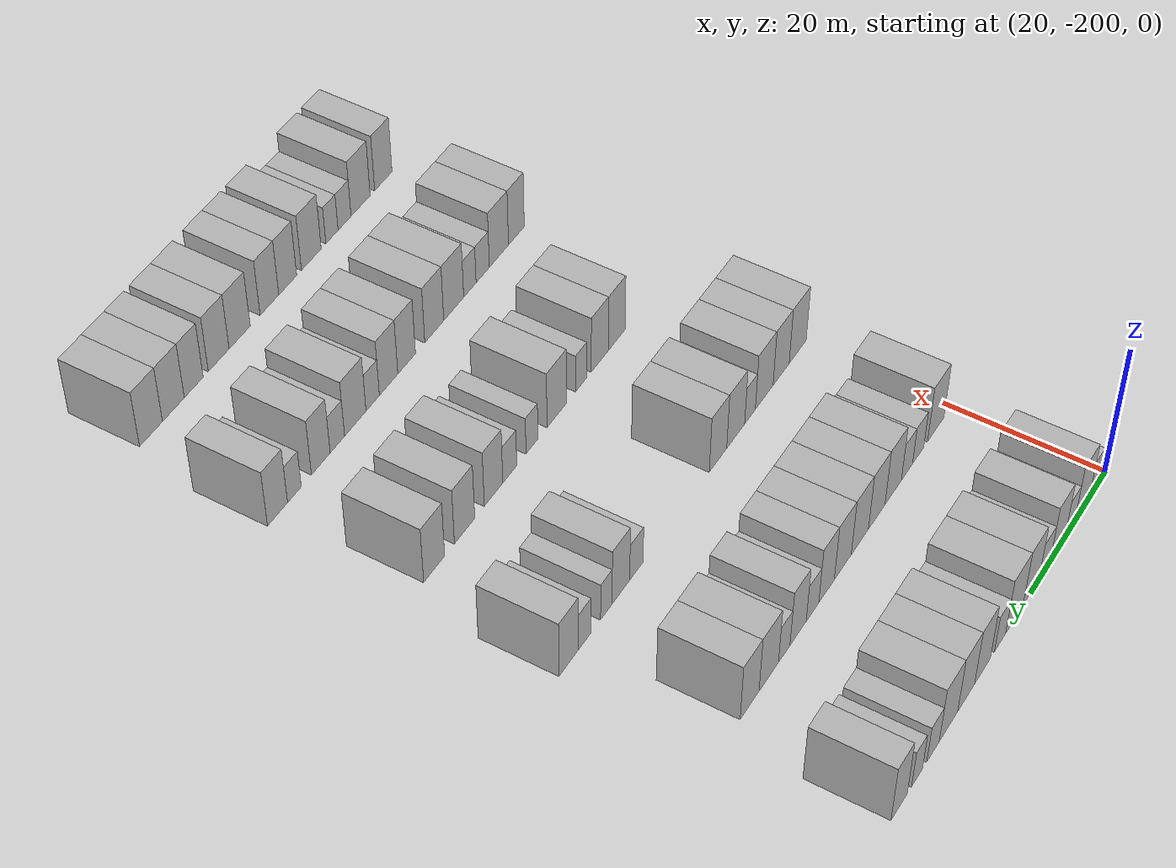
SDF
<sdf version="1.6">
 <world name="default">
  <model name="building_42">
   <static>1</static>
   <pose>25.0000 -196.8254 0 0.000000 0.000000 0.000000</pose>
   <link name="link">
    <pose>0 0 3.00 0 0 0</pose>
    <collision name="collision"><geometry><box><size>10.0000 2.4266 6.0000</size></box></geometry></collision>
    <visual name="visual">
     <cast_shadows>0</cast_shadows>
     <geometry><box><size>10.0000 2.4266 6.0000</size></box></geometry>
     <material>
      <script>
       <uri>model://HANNAS_wall/materials/scripts</uri>
       <uri>model://HANNAS_wall/materials/textures</uri>
       <name>vrc/HANNAS_wall</name>
      </script>
     </material>
    </visual>
   </link>
  </model>
  <model name="building_43">
   <static>1</static>
   <pose>25.0000 -193.6304 0 0.000000 0.000000 0.000000</pose>
   <link name="link">
    <pose>0 0 4.50 0 0 0</pose>
    <collision name="collision"><geometry><box><size>10.0000 3.9633 9.0000</size></box></geometry></collision>
    <visual name="visual">
     <cast_shadows>0</cast_shadows>
     <geometry><box><size>10.0000 3.9633 9.0000</size></box></geometry>
     <material>
      <script>
       <uri>model://HANNAS_wall/materials/scripts</uri>
       <uri>model://HANNAS_wall/materials/textures</uri>
       <name>vrc/HANNAS_wall</name>
      </script>
     </material>
    </visual>
   </link>
  </model>
  <model name="building_44">
   <static>1</static>
   <pose>25.0000 -190.3373 0 0.000000 0.000000 0.000000</pose>
   <link name="link">
    <pose>0 0 3.00 0 0 0</pose>
    <collision name="collision"><geometry><box><size>10.0000 2.6229 6.0000</size></box></geometry></collision>
    <visual name="visual">
     <cast_shadows>0</cast_shadows>
     <geometry><box><size>10.0000 2.6229 6.0000</size></box></geometry>
     <material>
      <script>
       <uri>model://HANNAS_wall/materials/scripts</uri>
       <uri>model://HANNAS_wall/materials/textures</uri>
       <name>vrc/HANNAS_wall</name>
      </script>
     </material>
    </visual>
   </link>
  </model>
  <model name="building_45">
   <static>1</static>
   <pose>25.0000 -187.0705 0 0.000000 0.000000 0.000000</pose>
   <link name="link">
    <pose>0 0 4.50 0 0 0</pose>
    <collision name="collision"><geometry><box><size>10.0000 3.9106 9.0000</size></box></geometry></collision>
    <visual name="visual">
     <cast_shadows>0</cast_shadows>
     <geometry><box><size>10.0000 3.9106 9.0000</size></box></geometry>
     <material>
      <script>
       <uri>model://HANNAS_wall/materials/scripts</uri>
       <uri>model://HANNAS_wall/materials/textures</uri>
       <name>vrc/HANNAS_wall</name>
      </script>
     </material>
    </visual>
   </link>
  </model>
  <model name="building_46">
   <static>1</static>
   <pose>25.0000 -183.6408 0 0.000000 0.000000 0.000000</pose>
   <link name="link">
    <pose>0 0 3.00 0 0 0</pose>
    <collision name="collision"><geometry><box><size>10.0000 2.9488 6.0000</size></box></geometry></collision>
    <visual name="visual">
     <cast_shadows>0</cast_shadows>
     <geometry><box><size>10.0000 2.9488 6.0000</size></box></geometry>
     <material>
      <script>
       <uri>model://HANNAS_wall/materials/scripts</uri>
       <uri>model://HANNAS_wall/materials/textures</uri>
       <name>vrc/HANNAS_wall</name>
      </script>
     </material>
    </visual>
   </link>
  </model>
  <model name="building_47">
   <static>1</static>
   <pose>25.0000 -180.1391 0 0.000000 0.000000 0.000000</pose>
   <link name="link">
    <pose>0 0 4.50 0 0 0</pose>
    <collision name="collision"><geometry><box><size>10.0000 4.0547 9.0000</size></box></geometry></collision>
    <visual name="visual">
     <cast_shadows>0</cast_shadows>
     <geometry><box><size>10.0000 4.0547 9.0000</size></box></geometry>
     <material>
      <script>
       <uri>model://HANNAS_wall/materials/scripts</uri>
       <uri>model://HANNAS_wall/materials/textures</uri>
       <name>vrc/HANNAS_wall</name>
      </script>
     </material>
    </visual>
   </link>
  </model>
  <model name="building_48">
   <static>1</static>
   <pose>25.0000 -175.8912 0 0.000000 0.000000 0.000000</pose>
   <link name="link">
    <pose>0 0 4.50 0 0 0</pose>
    <collision name="collision"><geometry><box><size>10.0000 4.4411 9.0000</size></box></geometry></collision>
    <visual name="visual">
     <cast_shadows>0</cast_shadows>
     <geometry><box><size>10.0000 4.4411 9.0000</size></box></geometry>
     <material>
      <script>
       <uri>model://HANNAS_wall/materials/scripts</uri>
       <uri>model://HANNAS_wall/materials/textures</uri>
       <name>vrc/HANNAS_wall</name>
      </script>
     </material>
    </visual>
   </link>
  </model>
  <model name="building_49">
   <static>1</static>
   <pose>25.0000 -172.2766 0 0.000000 0.000000 0.000000</pose>
   <link name="link">
    <pose>0 0 3.00 0 0 0</pose>
    <collision name="collision"><geometry><box><size>10.0000 2.7881 6.0000</size></box></geometry></collision>
    <visual name="visual">
     <cast_shadows>0</cast_shadows>
     <geometry><box><size>10.0000 2.7881 6.0000</size></box></geometry>
     <material>
      <script>
       <uri>model://HANNAS_wall/materials/scripts</uri>
       <uri>model://HANNAS_wall/materials/textures</uri>
       <name>vrc/HANNAS_wall</name>
      </script>
     </material>
    </visual>
   </link>
  </model>
  <model name="building_50">
   <static>1</static>
   <pose>25.0000 -167.9389 0 0.000000 0.000000 0.000000</pose>
   <link name="link">
    <pose>0 0 4.50 0 0 0</pose>
    <collision name="collision"><geometry><box><size>10.0000 3.8872 9.0000</size></box></geometry></collision>
    <visual name="visual">
     <cast_shadows>0</cast_shadows>
     <geometry><box><size>10.0000 3.8872 9.0000</size></box></geometry>
     <material>
      <script>
       <uri>model://HANNAS_wall/materials/scripts</uri>
       <uri>model://HANNAS_wall/materials/textures</uri>
       <name>vrc/HANNAS_wall</name>
      </script>
     </material>
    </visual>
   </link>
  </model>
  <model name="building_51">
   <static>1</static>
   <pose>25.0000 -163.9529 0 0.000000 0.000000 0.000000</pose>
   <link name="link">
    <pose>0 0 4.50 0 0 0</pose>
    <collision name="collision"><geometry><box><size>10.0000 4.0848 9.0000</size></box></geometry></collision>
    <visual name="visual">
     <cast_shadows>0</cast_shadows>
     <geometry><box><size>10.0000 4.0848 9.0000</size></box></geometry>
     <material>
      <script>
       <uri>model://HANNAS_wall/materials/scripts</uri>
       <uri>model://HANNAS_wall/materials/textures</uri>
       <name>vrc/HANNAS_wall</name>
      </script>
     </material>
    </visual>
   </link>
  </model>
  <model name="building_52">
   <static>1</static>
   <pose>25.0000 -159.7087 0 0.000000 0.000000 0.000000</pose>
   <link name="link">
    <pose>0 0 4.50 0 0 0</pose>
    <collision name="collision"><geometry><box><size>10.0000 4.4035 9.0000</size></box></geometry></collision>
    <visual name="visual">
     <cast_shadows>0</cast_shadows>
     <geometry><box><size>10.0000 4.4035 9.0000</size></box></geometry>
     <material>
      <script>
       <uri>model://HANNAS_wall/materials/scripts</uri>
       <uri>model://HANNAS_wall/materials/textures</uri>
       <name>vrc/HANNAS_wall</name>
      </script>
     </material>
    </visual>
   </link>
  </model>
  <model name="building_53">
   <static>1</static>
   <pose>25.0000 -156.0464 0 0.000000 0.000000 0.000000</pose>
   <link name="link">
    <pose>0 0 3.00 0 0 0</pose>
    <collision name="collision"><geometry><box><size>10.0000 2.9211 6.0000</size></box></geometry></collision>
    <visual name="visual">
     <cast_shadows>0</cast_shadows>
     <geometry><box><size>10.0000 2.9211 6.0000</size></box></geometry>
     <material>
      <script>
       <uri>model://HANNAS_wall/materials/scripts</uri>
       <uri>model://HANNAS_wall/materials/textures</uri>
       <name>vrc/HANNAS_wall</name>
      </script>
     </material>
    </visual>
   </link>
  </model>
  <model name="building_54">
   <static>1</static>
   <pose>25.0000 -152.3284 0 0.000000 0.000000 0.000000</pose>
   <link name="link">
    <pose>0 0 3.00 0 0 0</pose>
    <collision name="collision"><geometry><box><size>10.0000 2.5150 6.0000</size></box></geometry></collision>
    <visual name="visual">
     <cast_shadows>0</cast_shadows>
     <geometry><box><size>10.0000 2.5150 6.0000</size></box></geometry>
     <material>
      <script>
       <uri>model://HANNAS_wall/materials/scripts</uri>
       <uri>model://HANNAS_wall/materials/textures</uri>
       <name>vrc/HANNAS_wall</name>
      </script>
     </material>
    </visual>
   </link>
  </model>
  <model name="building_55">
   <static>1</static>
   <pose>25.0000 -148.2291 0 0.000000 0.000000 0.000000</pose>
   <link name="link">
    <pose>0 0 4.50 0 0 0</pose>
    <collision name="collision"><geometry><box><size>10.0000 3.6836 9.0000</size></box></geometry></collision>
    <visual name="visual">
     <cast_shadows>0</cast_shadows>
     <geometry><box><size>10.0000 3.6836 9.0000</size></box></geometry>
     <material>
      <script>
       <uri>model://HANNAS_wall/materials/scripts</uri>
       <uri>model://HANNAS_wall/materials/textures</uri>
       <name>vrc/HANNAS_wall</name>
      </script>
     </material>
    </visual>
   </link>
  </model>
  <model name="building_219">
   <static>1</static>
   <pose>44.0000 -196.0016 0 0.000000 0.000000 0.000000</pose>
   <link name="link">
    <pose>0 0 4.50 0 0 0</pose>
    <collision name="collision"><geometry><box><size>10.0000 4.2069 9.0000</size></box></geometry></collision>
    <visual name="visual">
     <cast_shadows>0</cast_shadows>
     <geometry><box><size>10.0000 4.2069 9.0000</size></box></geometry>
     <material>
      <script>
       <uri>model://HANNAS_wall/materials/scripts</uri>
       <uri>model://HANNAS_wall/materials/textures</uri>
       <name>vrc/HANNAS_wall</name>
      </script>
     </material>
    </visual>
   </link>
  </model>
  <model name="building_220">
   <static>1</static>
   <pose>44.0000 -191.4738 0 0.000000 0.000000 0.000000</pose>
   <link name="link">
    <pose>0 0 3.00 0 0 0</pose>
    <collision name="collision"><geometry><box><size>10.0000 2.8487 6.0000</size></box></geometry></collision>
    <visual name="visual">
     <cast_shadows>0</cast_shadows>
     <geometry><box><size>10.0000 2.8487 6.0000</size></box></geometry>
     <material>
      <script>
       <uri>model://HANNAS_wall/materials/scripts</uri>
       <uri>model://HANNAS_wall/materials/textures</uri>
       <name>vrc/HANNAS_wall</name>
      </script>
     </material>
    </visual>
   </link>
  </model>
  <model name="building_221">
   <static>1</static>
   <pose>44.0000 -188.6452 0 0.000000 0.000000 0.000000</pose>
   <link name="link">
    <pose>0 0 3.00 0 0 0</pose>
    <collision name="collision"><geometry><box><size>10.0000 2.8086 6.0000</size></box></geometry></collision>
    <visual name="visual">
     <cast_shadows>0</cast_shadows>
     <geometry><box><size>10.0000 2.8086 6.0000</size></box></geometry>
     <material>
      <script>
       <uri>model://HANNAS_wall/materials/scripts</uri>
       <uri>model://HANNAS_wall/materials/textures</uri>
       <name>vrc/HANNAS_wall</name>
      </script>
     </material>
    </visual>
   </link>
  </model>
  <model name="building_222">
   <static>1</static>
   <pose>44.0000 -185.1945 0 0.000000 0.000000 0.000000</pose>
   <link name="link">
    <pose>0 0 4.50 0 0 0</pose>
    <collision name="collision"><geometry><box><size>10.0000 4.0927 9.0000</size></box></geometry></collision>
    <visual name="visual">
     <cast_shadows>0</cast_shadows>
     <geometry><box><size>10.0000 4.0927 9.0000</size></box></geometry>
     <material>
      <script>
       <uri>model://HANNAS_wall/materials/scripts</uri>
       <uri>model://HANNAS_wall/materials/textures</uri>
       <name>vrc/HANNAS_wall</name>
      </script>
     </material>
    </visual>
   </link>
  </model>
  <model name="building_223">
   <static>1</static>
   <pose>44.0000 -181.1204 0 0.000000 0.000000 0.000000</pose>
   <link name="link">
    <pose>0 0 4.50 0 0 0</pose>
    <collision name="collision"><geometry><box><size>10.0000 4.0556 9.0000</size></box></geometry></collision>
    <visual name="visual">
     <cast_shadows>0</cast_shadows>
     <geometry><box><size>10.0000 4.0556 9.0000</size></box></geometry>
     <material>
      <script>
       <uri>model://HANNAS_wall/materials/scripts</uri>
       <uri>model://HANNAS_wall/materials/textures</uri>
       <name>vrc/HANNAS_wall</name>
      </script>
     </material>
    </visual>
   </link>
  </model>
  <model name="building_224">
   <static>1</static>
   <pose>44.0000 -177.0201 0 0.000000 0.000000 0.000000</pose>
   <link name="link">
    <pose>0 0 4.50 0 0 0</pose>
    <collision name="collision"><geometry><box><size>10.0000 4.1449 9.0000</size></box></geometry></collision>
    <visual name="visual">
     <cast_shadows>0</cast_shadows>
     <geometry><box><size>10.0000 4.1449 9.0000</size></box></geometry>
     <material>
      <script>
       <uri>model://HANNAS_wall/materials/scripts</uri>
       <uri>model://HANNAS_wall/materials/textures</uri>
       <name>vrc/HANNAS_wall</name>
      </script>
     </material>
    </visual>
   </link>
  </model>
  <model name="building_225">
   <static>1</static>
   <pose>44.0000 -172.9276 0 0.000000 0.000000 0.000000</pose>
   <link name="link">
    <pose>0 0 4.50 0 0 0</pose>
    <collision name="collision"><geometry><box><size>10.0000 4.0401 9.0000</size></box></geometry></collision>
    <visual name="visual">
     <cast_shadows>0</cast_shadows>
     <geometry><box><size>10.0000 4.0401 9.0000</size></box></geometry>
     <material>
      <script>
       <uri>model://HANNAS_wall/materials/scripts</uri>
       <uri>model://HANNAS_wall/materials/textures</uri>
       <name>vrc/HANNAS_wall</name>
      </script>
     </material>
    </visual>
   </link>
  </model>
  <model name="building_226">
   <static>1</static>
   <pose>44.0000 -169.0834 0 0.000000 0.000000 0.000000</pose>
   <link name="link">
    <pose>0 0 4.50 0 0 0</pose>
    <collision name="collision"><geometry><box><size>10.0000 3.6482 9.0000</size></box></geometry></collision>
    <visual name="visual">
     <cast_shadows>0</cast_shadows>
     <geometry><box><size>10.0000 3.6482 9.0000</size></box></geometry>
     <material>
      <script>
       <uri>model://HANNAS_wall/materials/scripts</uri>
       <uri>model://HANNAS_wall/materials/textures</uri>
       <name>vrc/HANNAS_wall</name>
      </script>
     </material>
    </visual>
   </link>
  </model>
  <model name="building_227">
   <static>1</static>
   <pose>44.0000 -165.8080 0 0.000000 0.000000 0.000000</pose>
   <link name="link">
    <pose>0 0 3.00 0 0 0</pose>
    <collision name="collision"><geometry><box><size>10.0000 2.9027 6.0000</size></box></geometry></collision>
    <visual name="visual">
     <cast_shadows>0</cast_shadows>
     <geometry><box><size>10.0000 2.9027 6.0000</size></box></geometry>
     <material>
      <script>
       <uri>model://HANNAS_wall/materials/scripts</uri>
       <uri>model://HANNAS_wall/materials/textures</uri>
       <name>vrc/HANNAS_wall</name>
      </script>
     </material>
    </visual>
   </link>
  </model>
  <model name="building_228">
   <static>1</static>
   <pose>44.0000 -162.5005 0 0.000000 0.000000 0.000000</pose>
   <link name="link">
    <pose>0 0 4.50 0 0 0</pose>
    <collision name="collision"><geometry><box><size>10.0000 3.7123 9.0000</size></box></geometry></collision>
    <visual name="visual">
     <cast_shadows>0</cast_shadows>
     <geometry><box><size>10.0000 3.7123 9.0000</size></box></geometry>
     <material>
      <script>
       <uri>model://HANNAS_wall/materials/scripts</uri>
       <uri>model://HANNAS_wall/materials/textures</uri>
       <name>vrc/HANNAS_wall</name>
      </script>
     </material>
    </visual>
   </link>
  </model>
  <model name="building_229">
   <static>1</static>
   <pose>44.0000 -159.3428 0 0.000000 0.000000 0.000000</pose>
   <link name="link">
    <pose>0 0 3.00 0 0 0</pose>
    <collision name="collision"><geometry><box><size>10.0000 2.6029 6.0000</size></box></geometry></collision>
    <visual name="visual">
     <cast_shadows>0</cast_shadows>
     <geometry><box><size>10.0000 2.6029 6.0000</size></box></geometry>
     <material>
      <script>
       <uri>model://HANNAS_wall/materials/scripts</uri>
       <uri>model://HANNAS_wall/materials/textures</uri>
       <name>vrc/HANNAS_wall</name>
      </script>
     </material>
    </visual>
   </link>
  </model>
  <model name="building_230">
   <static>1</static>
   <pose>44.0000 -155.8816 0 0.000000 0.000000 0.000000</pose>
   <link name="link">
    <pose>0 0 4.50 0 0 0</pose>
    <collision name="collision"><geometry><box><size>10.0000 4.3194 9.0000</size></box></geometry></collision>
    <visual name="visual">
     <cast_shadows>0</cast_shadows>
     <geometry><box><size>10.0000 4.3194 9.0000</size></box></geometry>
     <material>
      <script>
       <uri>model://HANNAS_wall/materials/scripts</uri>
       <uri>model://HANNAS_wall/materials/textures</uri>
       <name>vrc/HANNAS_wall</name>
      </script>
     </material>
    </visual>
   </link>
  </model>
  <model name="building_231">
   <static>1</static>
   <pose>44.0000 -151.6518 0 0.000000 0.000000 0.000000</pose>
   <link name="link">
    <pose>0 0 4.50 0 0 0</pose>
    <collision name="collision"><geometry><box><size>10.0000 4.1403 9.0000</size></box></geometry></collision>
    <visual name="visual">
     <cast_shadows>0</cast_shadows>
     <geometry><box><size>10.0000 4.1403 9.0000</size></box></geometry>
     <material>
      <script>
       <uri>model://HANNAS_wall/materials/scripts</uri>
       <uri>model://HANNAS_wall/materials/textures</uri>
       <name>vrc/HANNAS_wall</name>
      </script>
     </material>
    </visual>
   </link>
  </model>
  <model name="building_390">
   <static>1</static>
   <pose>63.0000 -198.6753 0 0.000000 0.000000 0.000000</pose>
   <link name="link">
    <pose>0 0 4.50 0 0 0</pose>
    <collision name="collision"><geometry><box><size>10.0000 4.2214 9.0000</size></box></geometry></collision>
    <visual name="visual">
     <cast_shadows>0</cast_shadows>
     <geometry><box><size>10.0000 4.2214 9.0000</size></box></geometry>
     <material>
      <script>
       <uri>model://HANNAS_wall/materials/scripts</uri>
       <uri>model://HANNAS_wall/materials/textures</uri>
       <name>vrc/HANNAS_wall</name>
      </script>
     </material>
    </visual>
   </link>
  </model>
  <model name="building_391">
   <static>1</static>
   <pose>63.0000 -194.5860 0 0.000000 0.000000 0.000000</pose>
   <link name="link">
    <pose>0 0 4.50 0 0 0</pose>
    <collision name="collision"><geometry><box><size>10.0000 3.9570 9.0000</size></box></geometry></collision>
    <visual name="visual">
     <cast_shadows>0</cast_shadows>
     <geometry><box><size>10.0000 3.9570 9.0000</size></box></geometry>
     <material>
      <script>
       <uri>model://HANNAS_wall/materials/scripts</uri>
       <uri>model://HANNAS_wall/materials/textures</uri>
       <name>vrc/HANNAS_wall</name>
      </script>
     </material>
    </visual>
   </link>
  </model>
  <model name="building_392">
   <static>1</static>
   <pose>63.0000 -190.4575 0 0.000000 0.000000 0.000000</pose>
   <link name="link">
    <pose>0 0 4.50 0 0 0</pose>
    <collision name="collision"><geometry><box><size>10.0000 4.3001 9.0000</size></box></geometry></collision>
    <visual name="visual">
     <cast_shadows>0</cast_shadows>
     <geometry><box><size>10.0000 4.3001 9.0000</size></box></geometry>
     <material>
      <script>
       <uri>model://HANNAS_wall/materials/scripts</uri>
       <uri>model://HANNAS_wall/materials/textures</uri>
       <name>vrc/HANNAS_wall</name>
      </script>
     </material>
    </visual>
   </link>
  </model>
  <model name="building_393">
   <static>1</static>
   <pose>63.0000 -187.0245 0 0.000000 0.000000 0.000000</pose>
   <link name="link">
    <pose>0 0 3.00 0 0 0</pose>
    <collision name="collision"><geometry><box><size>10.0000 2.5659 6.0000</size></box></geometry></collision>
    <visual name="visual">
     <cast_shadows>0</cast_shadows>
     <geometry><box><size>10.0000 2.5659 6.0000</size></box></geometry>
     <material>
      <script>
       <uri>model://HANNAS_wall/materials/scripts</uri>
       <uri>model://HANNAS_wall/materials/textures</uri>
       <name>vrc/HANNAS_wall</name>
      </script>
     </material>
    </visual>
   </link>
  </model>
  <model name="building_394">
   <static>1</static>
   <pose>63.0000 -183.6294 0 0.000000 0.000000 0.000000</pose>
   <link name="link">
    <pose>0 0 4.50 0 0 0</pose>
    <collision name="collision"><geometry><box><size>10.0000 4.2244 9.0000</size></box></geometry></collision>
    <visual name="visual">
     <cast_shadows>0</cast_shadows>
     <geometry><box><size>10.0000 4.2244 9.0000</size></box></geometry>
     <material>
      <script>
       <uri>model://HANNAS_wall/materials/scripts</uri>
       <uri>model://HANNAS_wall/materials/textures</uri>
       <name>vrc/HANNAS_wall</name>
      </script>
     </material>
    </visual>
   </link>
  </model>
  <model name="building_395">
   <static>1</static>
   <pose>63.0000 -179.4862 0 0.000000 0.000000 0.000000</pose>
   <link name="link">
    <pose>0 0 4.50 0 0 0</pose>
    <collision name="collision"><geometry><box><size>10.0000 4.0619 9.0000</size></box></geometry></collision>
    <visual name="visual">
     <cast_shadows>0</cast_shadows>
     <geometry><box><size>10.0000 4.0619 9.0000</size></box></geometry>
     <material>
      <script>
       <uri>model://HANNAS_wall/materials/scripts</uri>
       <uri>model://HANNAS_wall/materials/textures</uri>
       <name>vrc/HANNAS_wall</name>
      </script>
     </material>
    </visual>
   </link>
  </model>
  <model name="building_396">
   <static>1</static>
   <pose>63.0000 -161.0842 0 0.000000 0.000000 0.000000</pose>
   <link name="link">
    <pose>0 0 3.00 0 0 0</pose>
    <collision name="collision"><geometry><box><size>10.0000 2.9140 6.0000</size></box></geometry></collision>
    <visual name="visual">
     <cast_shadows>0</cast_shadows>
     <geometry><box><size>10.0000 2.9140 6.0000</size></box></geometry>
     <material>
      <script>
       <uri>model://HANNAS_wall/materials/scripts</uri>
       <uri>model://HANNAS_wall/materials/textures</uri>
       <name>vrc/HANNAS_wall</name>
      </script>
     </material>
    </visual>
   </link>
  </model>
  <model name="building_397">
   <static>1</static>
   <pose>63.0000 -157.7318 0 0.000000 0.000000 0.000000</pose>
   <link name="link">
    <pose>0 0 4.50 0 0 0</pose>
    <collision name="collision"><geometry><box><size>10.0000 3.7908 9.0000</size></box></geometry></collision>
    <visual name="visual">
     <cast_shadows>0</cast_shadows>
     <geometry><box><size>10.0000 3.7908 9.0000</size></box></geometry>
     <material>
      <script>
       <uri>model://HANNAS_wall/materials/scripts</uri>
       <uri>model://HANNAS_wall/materials/textures</uri>
       <name>vrc/HANNAS_wall</name>
      </script>
     </material>
    </visual>
   </link>
  </model>
  <model name="building_398">
   <static>1</static>
   <pose>63.0000 -154.6274 0 0.000000 0.000000 0.000000</pose>
   <link name="link">
    <pose>0 0 3.00 0 0 0</pose>
    <collision name="collision"><geometry><box><size>10.0000 2.4180 6.0000</size></box></geometry></collision>
    <visual name="visual">
     <cast_shadows>0</cast_shadows>
     <geometry><box><size>10.0000 2.4180 6.0000</size></box></geometry>
     <material>
      <script>
       <uri>model://HANNAS_wall/materials/scripts</uri>
       <uri>model://HANNAS_wall/materials/textures</uri>
       <name>vrc/HANNAS_wall</name>
      </script>
     </material>
    </visual>
   </link>
  </model>
  <model name="building_399">
   <static>1</static>
   <pose>63.0000 -150.0706 0 0.000000 0.000000 0.000000</pose>
   <link name="link">
    <pose>0 0 3.00 0 0 0</pose>
    <collision name="collision"><geometry><box><size>10.0000 2.6957 6.0000</size></box></geometry></collision>
    <visual name="visual">
     <cast_shadows>0</cast_shadows>
     <geometry><box><size>10.0000 2.6957 6.0000</size></box></geometry>
     <material>
      <script>
       <uri>model://HANNAS_wall/materials/scripts</uri>
       <uri>model://HANNAS_wall/materials/textures</uri>
       <name>vrc/HANNAS_wall</name>
      </script>
     </material>
    </visual>
   </link>
  </model>
  <model name="building_400">
   <static>1</static>
   <pose>63.0000 -146.7493 0 0.000000 0.000000 0.000000</pose>
   <link name="link">
    <pose>0 0 4.50 0 0 0</pose>
    <collision name="collision"><geometry><box><size>10.0000 3.9468 9.0000</size></box></geometry></collision>
    <visual name="visual">
     <cast_shadows>0</cast_shadows>
     <geometry><box><size>10.0000 3.9468 9.0000</size></box></geometry>
     <material>
      <script>
       <uri>model://HANNAS_wall/materials/scripts</uri>
       <uri>model://HANNAS_wall/materials/textures</uri>
       <name>vrc/HANNAS_wall</name>
      </script>
     </material>
    </visual>
   </link>
  </model>
  <model name="building_550">
   <static>1</static>
   <pose>82.0000 -189.6557 0 0.000000 0.000000 0.000000</pose>
   <link name="link">
    <pose>0 0 4.50 0 0 0</pose>
    <collision name="collision"><geometry><box><size>10.0000 3.8854 9.0000</size></box></geometry></collision>
    <visual name="visual">
     <cast_shadows>0</cast_shadows>
     <geometry><box><size>10.0000 3.8854 9.0000</size></box></geometry>
     <material>
      <script>
       <uri>model://HANNAS_wall/materials/scripts</uri>
       <uri>model://HANNAS_wall/materials/textures</uri>
       <name>vrc/HANNAS_wall</name>
      </script>
     </material>
    </visual>
   </link>
  </model>
  <model name="building_551">
   <static>1</static>
   <pose>82.0000 -185.7573 0 0.000000 0.000000 0.000000</pose>
   <link name="link">
    <pose>0 0 4.50 0 0 0</pose>
    <collision name="collision"><geometry><box><size>10.0000 3.9112 9.0000</size></box></geometry></collision>
    <visual name="visual">
     <cast_shadows>0</cast_shadows>
     <geometry><box><size>10.0000 3.9112 9.0000</size></box></geometry>
     <material>
      <script>
       <uri>model://HANNAS_wall/materials/scripts</uri>
       <uri>model://HANNAS_wall/materials/textures</uri>
       <name>vrc/HANNAS_wall</name>
      </script>
     </material>
    </visual>
   </link>
  </model>
  <model name="building_552">
   <static>1</static>
   <pose>82.0000 -181.5443 0 0.000000 0.000000 0.000000</pose>
   <link name="link">
    <pose>0 0 3.00 0 0 0</pose>
    <collision name="collision"><geometry><box><size>10.0000 2.5149 6.0000</size></box></geometry></collision>
    <visual name="visual">
     <cast_shadows>0</cast_shadows>
     <geometry><box><size>10.0000 2.5149 6.0000</size></box></geometry>
     <material>
      <script>
       <uri>model://HANNAS_wall/materials/scripts</uri>
       <uri>model://HANNAS_wall/materials/textures</uri>
       <name>vrc/HANNAS_wall</name>
      </script>
     </material>
    </visual>
   </link>
  </model>
  <model name="building_553">
   <static>1</static>
   <pose>82.0000 -176.1187 0 0.000000 0.000000 0.000000</pose>
   <link name="link">
    <pose>0 0 4.50 0 0 0</pose>
    <collision name="collision"><geometry><box><size>10.0000 4.3362 9.0000</size></box></geometry></collision>
    <visual name="visual">
     <cast_shadows>0</cast_shadows>
     <geometry><box><size>10.0000 4.3362 9.0000</size></box></geometry>
     <material>
      <script>
       <uri>model://HANNAS_wall/materials/scripts</uri>
       <uri>model://HANNAS_wall/materials/textures</uri>
       <name>vrc/HANNAS_wall</name>
      </script>
     </material>
    </visual>
   </link>
  </model>
  <model name="building_554">
   <static>1</static>
   <pose>82.0000 -170.6574 0 0.000000 0.000000 0.000000</pose>
   <link name="link">
    <pose>0 0 3.00 0 0 0</pose>
    <collision name="collision"><geometry><box><size>10.0000 2.5864 6.0000</size></box></geometry></collision>
    <visual name="visual">
     <cast_shadows>0</cast_shadows>
     <geometry><box><size>10.0000 2.5864 6.0000</size></box></geometry>
     <material>
      <script>
       <uri>model://HANNAS_wall/materials/scripts</uri>
       <uri>model://HANNAS_wall/materials/textures</uri>
       <name>vrc/HANNAS_wall</name>
      </script>
     </material>
    </visual>
   </link>
  </model>
  <model name="building_555">
   <static>1</static>
   <pose>82.0000 -165.8764 0 0.000000 0.000000 0.000000</pose>
   <link name="link">
    <pose>0 0 3.00 0 0 0</pose>
    <collision name="collision"><geometry><box><size>10.0000 2.9756 6.0000</size></box></geometry></collision>
    <visual name="visual">
     <cast_shadows>0</cast_shadows>
     <geometry><box><size>10.0000 2.9756 6.0000</size></box></geometry>
     <material>
      <script>
       <uri>model://HANNAS_wall/materials/scripts</uri>
       <uri>model://HANNAS_wall/materials/textures</uri>
       <name>vrc/HANNAS_wall</name>
      </script>
     </material>
    </visual>
   </link>
  </model>
  <model name="building_556">
   <static>1</static>
   <pose>82.0000 -162.4432 0 0.000000 0.000000 0.000000</pose>
   <link name="link">
    <pose>0 0 4.50 0 0 0</pose>
    <collision name="collision"><geometry><box><size>10.0000 3.8907 9.0000</size></box></geometry></collision>
    <visual name="visual">
     <cast_shadows>0</cast_shadows>
     <geometry><box><size>10.0000 3.8907 9.0000</size></box></geometry>
     <material>
      <script>
       <uri>model://HANNAS_wall/materials/scripts</uri>
       <uri>model://HANNAS_wall/materials/textures</uri>
       <name>vrc/HANNAS_wall</name>
      </script>
     </material>
    </visual>
   </link>
  </model>
  <model name="building_557">
   <static>1</static>
   <pose>82.0000 -156.4108 0 0.000000 0.000000 0.000000</pose>
   <link name="link">
    <pose>0 0 4.50 0 0 0</pose>
    <collision name="collision"><geometry><box><size>10.0000 4.1741 9.0000</size></box></geometry></collision>
    <visual name="visual">
     <cast_shadows>0</cast_shadows>
     <geometry><box><size>10.0000 4.1741 9.0000</size></box></geometry>
     <material>
      <script>
       <uri>model://HANNAS_wall/materials/scripts</uri>
       <uri>model://HANNAS_wall/materials/textures</uri>
       <name>vrc/HANNAS_wall</name>
      </script>
     </material>
    </visual>
   </link>
  </model>
  <model name="building_558">
   <static>1</static>
   <pose>82.0000 -150.2162 0 0.000000 0.000000 0.000000</pose>
   <link name="link">
    <pose>0 0 4.50 0 0 0</pose>
    <collision name="collision"><geometry><box><size>10.0000 4.2152 9.0000</size></box></geometry></collision>
    <visual name="visual">
     <cast_shadows>0</cast_shadows>
     <geometry><box><size>10.0000 4.2152 9.0000</size></box></geometry>
     <material>
      <script>
       <uri>model://HANNAS_wall/materials/scripts</uri>
       <uri>model://HANNAS_wall/materials/textures</uri>
       <name>vrc/HANNAS_wall</name>
      </script>
     </material>
    </visual>
   </link>
  </model>
  <model name="building_720">
   <static>1</static>
   <pose>101.0000 -198.3785 0 0.000000 0.000000 0.000000</pose>
   <link name="link">
    <pose>0 0 4.50 0 0 0</pose>
    <collision name="collision"><geometry><box><size>10.0000 3.6367 9.0000</size></box></geometry></collision>
    <visual name="visual">
     <cast_shadows>0</cast_shadows>
     <geometry><box><size>10.0000 3.6367 9.0000</size></box></geometry>
     <material>
      <script>
       <uri>model://HANNAS_wall/materials/scripts</uri>
       <uri>model://HANNAS_wall/materials/textures</uri>
       <name>vrc/HANNAS_wall</name>
      </script>
     </material>
    </visual>
   </link>
  </model>
  <model name="building_721">
   <static>1</static>
   <pose>101.0000 -194.3823 0 0.000000 0.000000 0.000000</pose>
   <link name="link">
    <pose>0 0 4.50 0 0 0</pose>
    <collision name="collision"><geometry><box><size>10.0000 4.3557 9.0000</size></box></geometry></collision>
    <visual name="visual">
     <cast_shadows>0</cast_shadows>
     <geometry><box><size>10.0000 4.3557 9.0000</size></box></geometry>
     <material>
      <script>
       <uri>model://HANNAS_wall/materials/scripts</uri>
       <uri>model://HANNAS_wall/materials/textures</uri>
       <name>vrc/HANNAS_wall</name>
      </script>
     </material>
    </visual>
   </link>
  </model>
  <model name="building_722">
   <static>1</static>
   <pose>101.0000 -190.7111 0 0.000000 0.000000 0.000000</pose>
   <link name="link">
    <pose>0 0 3.00 0 0 0</pose>
    <collision name="collision"><geometry><box><size>10.0000 2.9867 6.0000</size></box></geometry></collision>
    <visual name="visual">
     <cast_shadows>0</cast_shadows>
     <geometry><box><size>10.0000 2.9867 6.0000</size></box></geometry>
     <material>
      <script>
       <uri>model://HANNAS_wall/materials/scripts</uri>
       <uri>model://HANNAS_wall/materials/textures</uri>
       <name>vrc/HANNAS_wall</name>
      </script>
     </material>
    </visual>
   </link>
  </model>
  <model name="building_723">
   <static>1</static>
   <pose>101.0000 -187.8404 0 0.000000 0.000000 0.000000</pose>
   <link name="link">
    <pose>0 0 3.00 0 0 0</pose>
    <collision name="collision"><geometry><box><size>10.0000 2.7547 6.0000</size></box></geometry></collision>
    <visual name="visual">
     <cast_shadows>0</cast_shadows>
     <geometry><box><size>10.0000 2.7547 6.0000</size></box></geometry>
     <material>
      <script>
       <uri>model://HANNAS_wall/materials/scripts</uri>
       <uri>model://HANNAS_wall/materials/textures</uri>
       <name>vrc/HANNAS_wall</name>
      </script>
     </material>
    </visual>
   </link>
  </model>
  <model name="building_724">
   <static>1</static>
   <pose>101.0000 -184.2726 0 0.000000 0.000000 0.000000</pose>
   <link name="link">
    <pose>0 0 4.50 0 0 0</pose>
    <collision name="collision"><geometry><box><size>10.0000 4.3808 9.0000</size></box></geometry></collision>
    <visual name="visual">
     <cast_shadows>0</cast_shadows>
     <geometry><box><size>10.0000 4.3808 9.0000</size></box></geometry>
     <material>
      <script>
       <uri>model://HANNAS_wall/materials/scripts</uri>
       <uri>model://HANNAS_wall/materials/textures</uri>
       <name>vrc/HANNAS_wall</name>
      </script>
     </material>
    </visual>
   </link>
  </model>
  <model name="building_725">
   <static>1</static>
   <pose>101.0000 -180.0304 0 0.000000 0.000000 0.000000</pose>
   <link name="link">
    <pose>0 0 4.50 0 0 0</pose>
    <collision name="collision"><geometry><box><size>10.0000 4.1037 9.0000</size></box></geometry></collision>
    <visual name="visual">
     <cast_shadows>0</cast_shadows>
     <geometry><box><size>10.0000 4.1037 9.0000</size></box></geometry>
     <material>
      <script>
       <uri>model://HANNAS_wall/materials/scripts</uri>
       <uri>model://HANNAS_wall/materials/textures</uri>
       <name>vrc/HANNAS_wall</name>
      </script>
     </material>
    </visual>
   </link>
  </model>
  <model name="building_726">
   <static>1</static>
   <pose>101.0000 -174.1061 0 0.000000 0.000000 0.000000</pose>
   <link name="link">
    <pose>0 0 4.50 0 0 0</pose>
    <collision name="collision"><geometry><box><size>10.0000 3.7449 9.0000</size></box></geometry></collision>
    <visual name="visual">
     <cast_shadows>0</cast_shadows>
     <geometry><box><size>10.0000 3.7449 9.0000</size></box></geometry>
     <material>
      <script>
       <uri>model://HANNAS_wall/materials/scripts</uri>
       <uri>model://HANNAS_wall/materials/textures</uri>
       <name>vrc/HANNAS_wall</name>
      </script>
     </material>
    </visual>
   </link>
  </model>
  <model name="building_727">
   <static>1</static>
   <pose>101.0000 -170.3024 0 0.000000 0.000000 0.000000</pose>
   <link name="link">
    <pose>0 0 4.50 0 0 0</pose>
    <collision name="collision"><geometry><box><size>10.0000 3.8624 9.0000</size></box></geometry></collision>
    <visual name="visual">
     <cast_shadows>0</cast_shadows>
     <geometry><box><size>10.0000 3.8624 9.0000</size></box></geometry>
     <material>
      <script>
       <uri>model://HANNAS_wall/materials/scripts</uri>
       <uri>model://HANNAS_wall/materials/textures</uri>
       <name>vrc/HANNAS_wall</name>
      </script>
     </material>
    </visual>
   </link>
  </model>
  <model name="building_728">
   <static>1</static>
   <pose>101.0000 -166.9863 0 0.000000 0.000000 0.000000</pose>
   <link name="link">
    <pose>0 0 3.00 0 0 0</pose>
    <collision name="collision"><geometry><box><size>10.0000 2.7699 6.0000</size></box></geometry></collision>
    <visual name="visual">
     <cast_shadows>0</cast_shadows>
     <geometry><box><size>10.0000 2.7699 6.0000</size></box></geometry>
     <material>
      <script>
       <uri>model://HANNAS_wall/materials/scripts</uri>
       <uri>model://HANNAS_wall/materials/textures</uri>
       <name>vrc/HANNAS_wall</name>
      </script>
     </material>
    </visual>
   </link>
  </model>
  <model name="building_729">
   <static>1</static>
   <pose>101.0000 -163.4135 0 0.000000 0.000000 0.000000</pose>
   <link name="link">
    <pose>0 0 4.50 0 0 0</pose>
    <collision name="collision"><geometry><box><size>10.0000 4.3756 9.0000</size></box></geometry></collision>
    <visual name="visual">
     <cast_shadows>0</cast_shadows>
     <geometry><box><size>10.0000 4.3756 9.0000</size></box></geometry>
     <material>
      <script>
       <uri>model://HANNAS_wall/materials/scripts</uri>
       <uri>model://HANNAS_wall/materials/textures</uri>
       <name>vrc/HANNAS_wall</name>
      </script>
     </material>
    </visual>
   </link>
  </model>
  <model name="building_730">
   <static>1</static>
   <pose>101.0000 -159.7674 0 0.000000 0.000000 0.000000</pose>
   <link name="link">
    <pose>0 0 3.00 0 0 0</pose>
    <collision name="collision"><geometry><box><size>10.0000 2.9166 6.0000</size></box></geometry></collision>
    <visual name="visual">
     <cast_shadows>0</cast_shadows>
     <geometry><box><size>10.0000 2.9166 6.0000</size></box></geometry>
     <material>
      <script>
       <uri>model://HANNAS_wall/materials/scripts</uri>
       <uri>model://HANNAS_wall/materials/textures</uri>
       <name>vrc/HANNAS_wall</name>
      </script>
     </material>
    </visual>
   </link>
  </model>
  <model name="building_731">
   <static>1</static>
   <pose>101.0000 -156.4441 0 0.000000 0.000000 0.000000</pose>
   <link name="link">
    <pose>0 0 4.50 0 0 0</pose>
    <collision name="collision"><geometry><box><size>10.0000 3.7301 9.0000</size></box></geometry></collision>
    <visual name="visual">
     <cast_shadows>0</cast_shadows>
     <geometry><box><size>10.0000 3.7301 9.0000</size></box></geometry>
     <material>
      <script>
       <uri>model://HANNAS_wall/materials/scripts</uri>
       <uri>model://HANNAS_wall/materials/textures</uri>
       <name>vrc/HANNAS_wall</name>
      </script>
     </material>
    </visual>
   </link>
  </model>
  <model name="building_732">
   <static>1</static>
   <pose>101.0000 -151.2382 0 0.000000 0.000000 0.000000</pose>
   <link name="link">
    <pose>0 0 3.00 0 0 0</pose>
    <collision name="collision"><geometry><box><size>10.0000 2.6817 6.0000</size></box></geometry></collision>
    <visual name="visual">
     <cast_shadows>0</cast_shadows>
     <geometry><box><size>10.0000 2.6817 6.0000</size></box></geometry>
     <material>
      <script>
       <uri>model://HANNAS_wall/materials/scripts</uri>
       <uri>model://HANNAS_wall/materials/textures</uri>
       <name>vrc/HANNAS_wall</name>
      </script>
     </material>
    </visual>
   </link>
  </model>
  <model name="building_733">
   <static>1</static>
   <pose>101.0000 -147.9600 0 0.000000 0.000000 0.000000</pose>
   <link name="link">
    <pose>0 0 4.50 0 0 0</pose>
    <collision name="collision"><geometry><box><size>10.0000 3.8746 9.0000</size></box></geometry></collision>
    <visual name="visual">
     <cast_shadows>0</cast_shadows>
     <geometry><box><size>10.0000 3.8746 9.0000</size></box></geometry>
     <material>
      <script>
       <uri>model://HANNAS_wall/materials/scripts</uri>
       <uri>model://HANNAS_wall/materials/textures</uri>
       <name>vrc/HANNAS_wall</name>
      </script>
     </material>
    </visual>
   </link>
  </model>
  <model name="building_899">
   <static>1</static>
   <pose>120.0000 -198.2086 0 0.000000 0.000000 0.000000</pose>
   <link name="link">
    <pose>0 0 4.50 0 0 0</pose>
    <collision name="collision"><geometry><box><size>10.0000 3.8719 9.0000</size></box></geometry></collision>
    <visual name="visual">
     <cast_shadows>0</cast_shadows>
     <geometry><box><size>10.0000 3.8719 9.0000</size></box></geometry>
     <material>
      <script>
       <uri>model://HANNAS_wall/materials/scripts</uri>
       <uri>model://HANNAS_wall/materials/textures</uri>
       <name>vrc/HANNAS_wall</name>
      </script>
     </material>
    </visual>
   </link>
  </model>
  <model name="building_900">
   <static>1</static>
   <pose>120.0000 -193.1760 0 0.000000 0.000000 0.000000</pose>
   <link name="link">
    <pose>0 0 4.50 0 0 0</pose>
    <collision name="collision"><geometry><box><size>10.0000 4.1934 9.0000</size></box></geometry></collision>
    <visual name="visual">
     <cast_shadows>0</cast_shadows>
     <geometry><box><size>10.0000 4.1934 9.0000</size></box></geometry>
     <material>
      <script>
       <uri>model://HANNAS_wall/materials/scripts</uri>
       <uri>model://HANNAS_wall/materials/textures</uri>
       <name>vrc/HANNAS_wall</name>
      </script>
     </material>
    </visual>
   </link>
  </model>
  <model name="building_901">
   <static>1</static>
   <pose>120.0000 -189.6711 0 0.000000 0.000000 0.000000</pose>
   <link name="link">
    <pose>0 0 3.00 0 0 0</pose>
    <collision name="collision"><geometry><box><size>10.0000 2.8163 6.0000</size></box></geometry></collision>
    <visual name="visual">
     <cast_shadows>0</cast_shadows>
     <geometry><box><size>10.0000 2.8163 6.0000</size></box></geometry>
     <material>
      <script>
       <uri>model://HANNAS_wall/materials/scripts</uri>
       <uri>model://HANNAS_wall/materials/textures</uri>
       <name>vrc/HANNAS_wall</name>
      </script>
     </material>
    </visual>
   </link>
  </model>
  <model name="building_902">
   <static>1</static>
   <pose>120.0000 -186.9500 0 0.000000 0.000000 0.000000</pose>
   <link name="link">
    <pose>0 0 3.00 0 0 0</pose>
    <collision name="collision"><geometry><box><size>10.0000 2.6259 6.0000</size></box></geometry></collision>
    <visual name="visual">
     <cast_shadows>0</cast_shadows>
     <geometry><box><size>10.0000 2.6259 6.0000</size></box></geometry>
     <material>
      <script>
       <uri>model://HANNAS_wall/materials/scripts</uri>
       <uri>model://HANNAS_wall/materials/textures</uri>
       <name>vrc/HANNAS_wall</name>
      </script>
     </material>
    </visual>
   </link>
  </model>
  <model name="building_903">
   <static>1</static>
   <pose>120.0000 -182.5408 0 0.000000 0.000000 0.000000</pose>
   <link name="link">
    <pose>0 0 4.50 0 0 0</pose>
    <collision name="collision"><geometry><box><size>10.0000 4.1927 9.0000</size></box></geometry></collision>
    <visual name="visual">
     <cast_shadows>0</cast_shadows>
     <geometry><box><size>10.0000 4.1927 9.0000</size></box></geometry>
     <material>
      <script>
       <uri>model://HANNAS_wall/materials/scripts</uri>
       <uri>model://HANNAS_wall/materials/textures</uri>
       <name>vrc/HANNAS_wall</name>
      </script>
     </material>
    </visual>
   </link>
  </model>
  <model name="building_904">
   <static>1</static>
   <pose>120.0000 -177.5781 0 0.000000 0.000000 0.000000</pose>
   <link name="link">
    <pose>0 0 4.50 0 0 0</pose>
    <collision name="collision"><geometry><box><size>10.0000 3.7326 9.0000</size></box></geometry></collision>
    <visual name="visual">
     <cast_shadows>0</cast_shadows>
     <geometry><box><size>10.0000 3.7326 9.0000</size></box></geometry>
     <material>
      <script>
       <uri>model://HANNAS_wall/materials/scripts</uri>
       <uri>model://HANNAS_wall/materials/textures</uri>
       <name>vrc/HANNAS_wall</name>
      </script>
     </material>
    </visual>
   </link>
  </model>
  <model name="building_905">
   <static>1</static>
   <pose>120.0000 -173.7889 0 0.000000 0.000000 0.000000</pose>
   <link name="link">
    <pose>0 0 4.50 0 0 0</pose>
    <collision name="collision"><geometry><box><size>10.0000 3.8459 9.0000</size></box></geometry></collision>
    <visual name="visual">
     <cast_shadows>0</cast_shadows>
     <geometry><box><size>10.0000 3.8459 9.0000</size></box></geometry>
     <material>
      <script>
       <uri>model://HANNAS_wall/materials/scripts</uri>
       <uri>model://HANNAS_wall/materials/textures</uri>
       <name>vrc/HANNAS_wall</name>
      </script>
     </material>
    </visual>
   </link>
  </model>
  <model name="building_906">
   <static>1</static>
   <pose>120.0000 -167.7356 0 0.000000 0.000000 0.000000</pose>
   <link name="link">
    <pose>0 0 4.50 0 0 0</pose>
    <collision name="collision"><geometry><box><size>10.0000 4.2608 9.0000</size></box></geometry></collision>
    <visual name="visual">
     <cast_shadows>0</cast_shadows>
     <geometry><box><size>10.0000 4.2608 9.0000</size></box></geometry>
     <material>
      <script>
       <uri>model://HANNAS_wall/materials/scripts</uri>
       <uri>model://HANNAS_wall/materials/textures</uri>
       <name>vrc/HANNAS_wall</name>
      </script>
     </material>
    </visual>
   </link>
  </model>
  <model name="building_907">
   <static>1</static>
   <pose>120.0000 -163.5360 0 0.000000 0.000000 0.000000</pose>
   <link name="link">
    <pose>0 0 4.50 0 0 0</pose>
    <collision name="collision"><geometry><box><size>10.0000 4.1383 9.0000</size></box></geometry></collision>
    <visual name="visual">
     <cast_shadows>0</cast_shadows>
     <geometry><box><size>10.0000 4.1383 9.0000</size></box></geometry>
     <material>
      <script>
       <uri>model://HANNAS_wall/materials/scripts</uri>
       <uri>model://HANNAS_wall/materials/textures</uri>
       <name>vrc/HANNAS_wall</name>
      </script>
     </material>
    </visual>
   </link>
  </model>
  <model name="building_908">
   <static>1</static>
   <pose>120.0000 -158.6237 0 0.000000 0.000000 0.000000</pose>
   <link name="link">
    <pose>0 0 4.50 0 0 0</pose>
    <collision name="collision"><geometry><box><size>10.0000 3.6864 9.0000</size></box></geometry></collision>
    <visual name="visual">
     <cast_shadows>0</cast_shadows>
     <geometry><box><size>10.0000 3.6864 9.0000</size></box></geometry>
     <material>
      <script>
       <uri>model://HANNAS_wall/materials/scripts</uri>
       <uri>model://HANNAS_wall/materials/textures</uri>
       <name>vrc/HANNAS_wall</name>
      </script>
     </material>
    </visual>
   </link>
  </model>
  <model name="building_909">
   <static>1</static>
   <pose>120.0000 -154.6764 0 0.000000 0.000000 0.000000</pose>
   <link name="link">
    <pose>0 0 4.50 0 0 0</pose>
    <collision name="collision"><geometry><box><size>10.0000 4.2080 9.0000</size></box></geometry></collision>
    <visual name="visual">
     <cast_shadows>0</cast_shadows>
     <geometry><box><size>10.0000 4.2080 9.0000</size></box></geometry>
     <material>
      <script>
       <uri>model://HANNAS_wall/materials/scripts</uri>
       <uri>model://HANNAS_wall/materials/textures</uri>
       <name>vrc/HANNAS_wall</name>
      </script>
     </material>
    </visual>
   </link>
  </model>
  <model name="building_910">
   <static>1</static>
   <pose>120.0000 -150.3972 0 0.000000 0.000000 0.000000</pose>
   <link name="link">
    <pose>0 0 4.50 0 0 0</pose>
    <collision name="collision"><geometry><box><size>10.0000 4.3504 9.0000</size></box></geometry></collision>
    <visual name="visual">
     <cast_shadows>0</cast_shadows>
     <geometry><box><size>10.0000 4.3504 9.0000</size></box></geometry>
     <material>
      <script>
       <uri>model://HANNAS_wall/materials/scripts</uri>
       <uri>model://HANNAS_wall/materials/textures</uri>
       <name>vrc/HANNAS_wall</name>
      </script>
     </material>
    </visual>
   </link>
  </model>
 </world>
</sdf>
